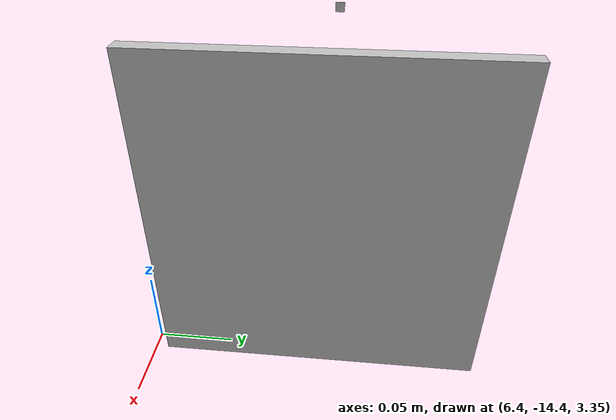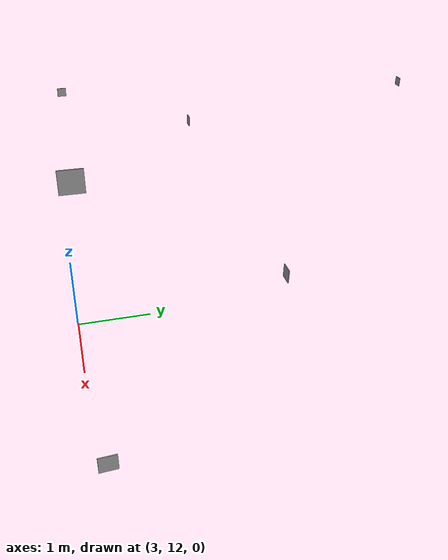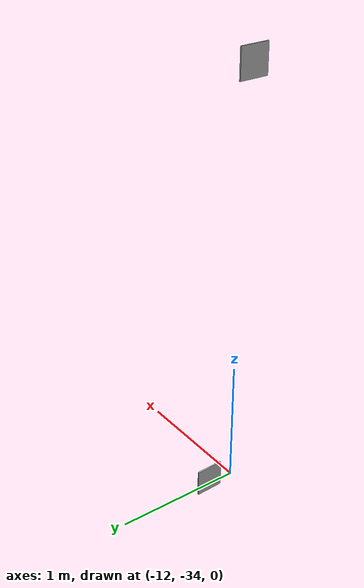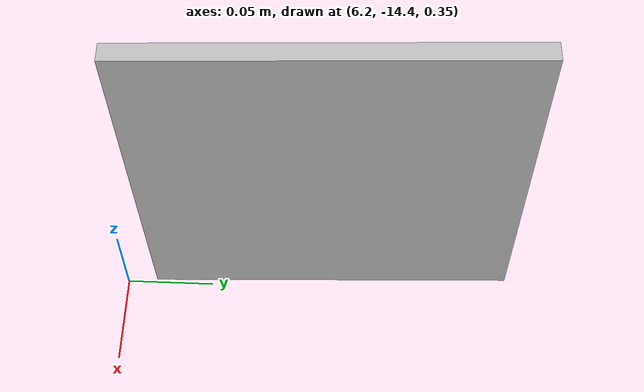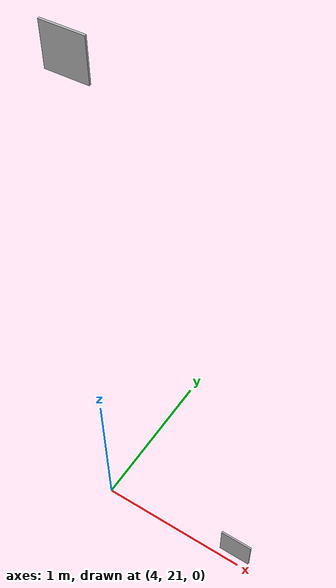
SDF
<sdf version="1.7">
 <world name="world">
  <gravity>0 0 -9.8</gravity>
  <physics name="default_physics" default="0" type="ode">
   <max_step_size>0.001</max_step_size>
   <real_time_factor>1</real_time_factor>
   <real_time_update_rate>1000</real_time_update_rate>
  </physics>
  <light name="ceiling_light_0" type="spot">
   <pose>-0.194533 13.8034 2.8 0 -0 0</pose>
   <diffuse>0.494118 0.494118 0.494118 1</diffuse>
   <specular>0.0941176 0.0941176 0.0941176 1</specular>
   <direction>0 0 -1</direction>
   <attenuation>
    <range>20</range>
    <constant>0.8</constant>
    <linear>0.1</linear>
    <quadratic>0.001</quadratic>
   </attenuation>
   <cast_shadows>0</cast_shadows>
   <spot><inner_angle>1</inner_angle><outer_angle>2.5</outer_angle><falloff>1</falloff></spot>
  </light>
  <light name="ceiling_light_1" type="spot">
   <pose>6.30005 8.9551 2.8 0 -0 0</pose>
   <diffuse>0.494118 0.494118 0.494118 1</diffuse>
   <specular>0.0941176 0.0941176 0.0941176 1</specular>
   <direction>0 0 -1</direction>
   <attenuation>
    <range>20</range>
    <constant>0.8</constant>
    <linear>0.1</linear>
    <quadratic>0.001</quadratic>
   </attenuation>
   <cast_shadows>0</cast_shadows>
   <spot><inner_angle>1</inner_angle><outer_angle>2.5</outer_angle><falloff>1</falloff></spot>
  </light>
  <light name="ceiling_light_2" type="spot">
   <pose>0.212387 2.1354 2.8 0 -0 0</pose>
   <diffuse>0.494118 0.494118 0.494118 1</diffuse>
   <specular>0.0941176 0.0941176 0.0941176 1</specular>
   <direction>0 0 -1</direction>
   <attenuation>
    <range>20</range>
    <constant>0.8</constant>
    <linear>0.1</linear>
    <quadratic>0.001</quadratic>
   </attenuation>
   <cast_shadows>0</cast_shadows>
   <spot><inner_angle>1</inner_angle><outer_angle>2.5</outer_angle><falloff>1</falloff></spot>
  </light>
  <light name="ceiling_light_3" type="spot">
   <pose>-5.81057 7.18327 2.8 0 -0 0</pose>
   <diffuse>0.494118 0.494118 0.494118 1</diffuse>
   <specular>0.0941176 0.0941176 0.0941176 1</specular>
   <direction>0 0 -1</direction>
   <attenuation>
    <range>20</range>
    <constant>0.8</constant>
    <linear>0.1</linear>
    <quadratic>0.001</quadratic>
   </attenuation>
   <cast_shadows>0</cast_shadows>
   <spot><inner_angle>1</inner_angle><outer_angle>2.5</outer_angle><falloff>1</falloff></spot>
  </light>
  <light name="ceiling_light_4" type="spot">
   <pose>-4.54396 -3.67312 2.8 0 -0 0</pose>
   <diffuse>0.494118 0.494118 0.494118 1</diffuse>
   <specular>0.0941176 0.0941176 0.0941176 1</specular>
   <direction>0 0 -1</direction>
   <attenuation>
    <range>20</range>
    <constant>0.8</constant>
    <linear>0.1</linear>
    <quadratic>0.001</quadratic>
   </attenuation>
   <cast_shadows>0</cast_shadows>
   <spot><inner_angle>1</inner_angle><outer_angle>2.5</outer_angle><falloff>1</falloff></spot>
  </light>
  <light name="ceiling_light_5" type="spot">
   <pose>-4.37087 -14.4782 2.8 0 -0 0</pose>
   <diffuse>0.494118 0.494118 0.494118 1</diffuse>
   <specular>0.0941176 0.0941176 0.0941176 1</specular>
   <direction>0 0 -1</direction>
   <attenuation>
    <range>20</range>
    <constant>0.8</constant>
    <linear>0.1</linear>
    <quadratic>0.001</quadratic>
   </attenuation>
   <cast_shadows>0</cast_shadows>
   <spot><inner_angle>1</inner_angle><outer_angle>2.5</outer_angle><falloff>1</falloff></spot>
  </light>
  <light name="ceiling_light_6" type="spot">
   <pose>-4.39457 -24.5382 2.8 0 -0 0</pose>
   <diffuse>0.494118 0.494118 0.494118 1</diffuse>
   <specular>0.0941176 0.0941176 0.0941176 1</specular>
   <direction>0 0 -1</direction>
   <attenuation>
    <range>20</range>
    <constant>0.8</constant>
    <linear>0.1</linear>
    <quadratic>0.001</quadratic>
   </attenuation>
   <cast_shadows>0</cast_shadows>
   <spot><inner_angle>1</inner_angle><outer_angle>2.5</outer_angle><falloff>1</falloff></spot>
  </light>
  <light name="ceiling_light_7" type="spot">
   <pose>-4.89858 -33.5301 2.8 0 -0 0</pose>
   <diffuse>0.494118 0.494118 0.494118 1</diffuse>
   <specular>0.0941176 0.0941176 0.0941176 1</specular>
   <direction>0 0 -1</direction>
   <attenuation>
    <range>20</range>
    <constant>0.8</constant>
    <linear>0.1</linear>
    <quadratic>0.001</quadratic>
   </attenuation>
   <cast_shadows>0</cast_shadows>
   <spot><inner_angle>1</inner_angle><outer_angle>2.5</outer_angle><falloff>1</falloff></spot>
  </light>
  <light name="ceiling_light_8" type="spot">
   <pose>4.63967 -24.4587 2.8 0 -0 0</pose>
   <diffuse>0.494118 0.494118 0.494118 1</diffuse>
   <specular>0.0941176 0.0941176 0.0941176 1</specular>
   <direction>0 0 -1</direction>
   <attenuation>
    <range>20</range>
    <constant>0.8</constant>
    <linear>0.1</linear>
    <quadratic>0.001</quadratic>
   </attenuation>
   <cast_shadows>0</cast_shadows>
   <spot><inner_angle>1</inner_angle><outer_angle>2.5</outer_angle><falloff>1</falloff></spot>
  </light>
  <light name="ceiling_light_9" type="spot">
   <pose>4.92633 -14.3923 2.8 0 -0 0</pose>
   <diffuse>0.494118 0.494118 0.494118 1</diffuse>
   <specular>0.0941176 0.0941176 0.0941176 1</specular>
   <direction>0 0 -1</direction>
   <attenuation>
    <range>20</range>
    <constant>0.8</constant>
    <linear>0.1</linear>
    <quadratic>0.001</quadratic>
   </attenuation>
   <cast_shadows>0</cast_shadows>
   <spot><inner_angle>1</inner_angle><outer_angle>2.5</outer_angle><falloff>1</falloff></spot>
  </light>
  <light name="ceiling_light_10" type="spot">
   <pose>4.7009 -3.77715 2.8 0 -0 0</pose>
   <diffuse>0.494118 0.494118 0.494118 1</diffuse>
   <specular>0.0941176 0.0941176 0.0941176 1</specular>
   <direction>0 0 -1</direction>
   <attenuation>
    <range>20</range>
    <constant>0.8</constant>
    <linear>0.1</linear>
    <quadratic>0.001</quadratic>
   </attenuation>
   <cast_shadows>0</cast_shadows>
   <spot><inner_angle>1</inner_angle><outer_angle>2.5</outer_angle><falloff>1</falloff></spot>
  </light>
  <light name="ceiling_light_11" type="spot">
   <pose>-9.02467 14.516 2.8 0 -0 0</pose>
   <diffuse>0.494118 0.494118 0.494118 1</diffuse>
   <specular>0.0941176 0.0941176 0.0941176 1</specular>
   <direction>0 0 -1</direction>
   <attenuation>
    <range>20</range>
    <constant>0.8</constant>
    <linear>0.1</linear>
    <quadratic>0.001</quadratic>
   </attenuation>
   <cast_shadows>0</cast_shadows>
   <spot><inner_angle>1</inner_angle><outer_angle>2.5</outer_angle><falloff>1</falloff></spot>
  </light>
  <light name="ceiling_light_12" type="spot">
   <pose>9.12495 14.4234 2.8 0 -0 0</pose>
   <diffuse>0.494118 0.494118 0.494118 1</diffuse>
   <specular>0.0941176 0.0941176 0.0941176 1</specular>
   <direction>0 0 -1</direction>
   <attenuation>
    <range>20</range>
    <constant>0.8</constant>
    <linear>0.1</linear>
    <quadratic>0.001</quadratic>
   </attenuation>
   <cast_shadows>0</cast_shadows>
   <spot><inner_angle>1</inner_angle><outer_angle>2.5</outer_angle><falloff>1</falloff></spot>
  </light>
  <light name="ceiling_light_13" type="spot">
   <pose>9.49822 -5.56304 2.8 0 -0 0</pose>
   <diffuse>0.494118 0.494118 0.494118 1</diffuse>
   <specular>0.0941176 0.0941176 0.0941176 1</specular>
   <direction>0 0 -1</direction>
   <attenuation>
    <range>20</range>
    <constant>0.8</constant>
    <linear>0.1</linear>
    <quadratic>0.001</quadratic>
   </attenuation>
   <cast_shadows>0</cast_shadows>
   <spot><inner_angle>1</inner_angle><outer_angle>2.5</outer_angle><falloff>1</falloff></spot>
  </light>
  <light name="ceiling_light_14" type="spot">
   <pose>-9.46806 -4.74662 2.8 0 -0 0</pose>
   <diffuse>0.494118 0.494118 0.494118 1</diffuse>
   <specular>0.0941176 0.0941176 0.0941176 1</specular>
   <direction>0 0 -1</direction>
   <attenuation>
    <range>20</range>
    <constant>0.8</constant>
    <linear>0.1</linear>
    <quadratic>0.001</quadratic>
   </attenuation>
   <cast_shadows>0</cast_shadows>
   <spot><inner_angle>1</inner_angle><outer_angle>2.5</outer_angle><falloff>1</falloff></spot>
  </light>
  <light name="ceiling_light_15" type="spot">
   <pose>-9.46885 -19.0778 2.8 0 -0 0</pose>
   <diffuse>0.494118 0.494118 0.494118 1</diffuse>
   <specular>0.0901961 0.0901961 0.0901961 1</specular>
   <direction>0 0 -1</direction>
   <attenuation>
    <range>20</range>
    <constant>0.8</constant>
    <linear>0.1</linear>
    <quadratic>0.001</quadratic>
   </attenuation>
   <cast_shadows>0</cast_shadows>
   <spot><inner_angle>1</inner_angle><outer_angle>2.5</outer_angle><falloff>1</falloff></spot>
  </light>
  <light name="ceiling_light_16" type="spot">
   <pose>-9.42207 -28.0708 2.8 0 -0 0</pose>
   <diffuse>0.494118 0.494118 0.494118 1</diffuse>
   <specular>0.0901961 0.0901961 0.0901961 1</specular>
   <direction>0 0 -1</direction>
   <attenuation>
    <range>20</range>
    <constant>0.8</constant>
    <linear>0.1</linear>
    <quadratic>0.001</quadratic>
   </attenuation>
   <cast_shadows>0</cast_shadows>
   <spot><inner_angle>1</inner_angle><outer_angle>2.5</outer_angle><falloff>1</falloff></spot>
  </light>
  <light name="ceiling_light_17" type="spot">
   <pose>1.66302 -11.4026 2.8 0 -0 0</pose>
   <diffuse>0.494118 0.494118 0.494118 1</diffuse>
   <specular>0.0901961 0.0901961 0.0901961 1</specular>
   <direction>0 0 -1</direction>
   <attenuation>
    <range>20</range>
    <constant>0.8</constant>
    <linear>0.1</linear>
    <quadratic>0.001</quadratic>
   </attenuation>
   <cast_shadows>0</cast_shadows>
   <spot><inner_angle>1</inner_angle><outer_angle>2.5</outer_angle><falloff>1</falloff></spot>
  </light>
  <light name="ceiling_light_18" type="spot">
   <pose>-1.64839 -19.4418 2.8 0 -0 0</pose>
   <diffuse>0.494118 0.494118 0.494118 1</diffuse>
   <specular>0.0901961 0.0901961 0.0901961 1</specular>
   <direction>0 0 -1</direction>
   <attenuation>
    <range>20</range>
    <constant>0.8</constant>
    <linear>0.1</linear>
    <quadratic>0.001</quadratic>
   </attenuation>
   <cast_shadows>0</cast_shadows>
   <spot><inner_angle>1</inner_angle><outer_angle>2.5</outer_angle><falloff>1</falloff></spot>
  </light>
  <light name="ceiling_light_19" type="spot">
   <pose>1.85793 -19.3856 2.8 0 -0 0</pose>
   <diffuse>0.494118 0.494118 0.494118 1</diffuse>
   <specular>0.0901961 0.0901961 0.0901961 1</specular>
   <direction>0 0 -1</direction>
   <attenuation>
    <range>20</range>
    <constant>0.8</constant>
    <linear>0.1</linear>
    <quadratic>0.001</quadratic>
   </attenuation>
   <cast_shadows>0</cast_shadows>
   <spot><inner_angle>1</inner_angle><outer_angle>2.5</outer_angle><falloff>1</falloff></spot>
  </light>
  <light name="ceiling_light_20" type="spot">
   <pose>-3.74086 -4.44142 2.8 0 -0 0</pose>
   <diffuse>0.494118 0.494118 0.494118 1</diffuse>
   <specular>0.0901961 0.0901961 0.0901961 1</specular>
   <direction>0 0 -1</direction>
   <attenuation>
    <range>20</range>
    <constant>0.8</constant>
    <linear>0.1</linear>
    <quadratic>0.001</quadratic>
   </attenuation>
   <cast_shadows>0</cast_shadows>
   <spot><inner_angle>1</inner_angle><outer_angle>2.5</outer_angle><falloff>1</falloff></spot>
  </light>
  <light name="ceiling_light_21" type="spot">
   <pose>-1.7167 -11.3151 2.8 0 -0 0</pose>
   <diffuse>0.494118 0.494118 0.494118 1</diffuse>
   <specular>0.0901961 0.0901961 0.0901961 1</specular>
   <direction>0 0 -1</direction>
   <attenuation>
    <range>20</range>
    <constant>0.8</constant>
    <linear>0.1</linear>
    <quadratic>0.001</quadratic>
   </attenuation>
   <cast_shadows>0</cast_shadows>
   <spot><inner_angle>1</inner_angle><outer_angle>2.5</outer_angle><falloff>1</falloff></spot>
  </light>
  <light name="ceiling_light_22" type="spot">
   <pose>-9.60933 -14.3792 2.8 0 -0 0</pose>
   <diffuse>0.494118 0.494118 0.494118 1</diffuse>
   <specular>0.0901961 0.0901961 0.0901961 1</specular>
   <direction>0 0 -1</direction>
   <attenuation>
    <range>20</range>
    <constant>0.8</constant>
    <linear>0.1</linear>
    <quadratic>0.001</quadratic>
   </attenuation>
   <cast_shadows>0</cast_shadows>
   <spot><inner_angle>1</inner_angle><outer_angle>2.5</outer_angle><falloff>1</falloff></spot>
  </light>
  <light name="ceiling_light_23" type="spot">
   <pose>-8.89647 0.199867 2.8 0 -0 0</pose>
   <diffuse>0.494118 0.494118 0.494118 1</diffuse>
   <specular>0.0901961 0.0901961 0.0901961 1</specular>
   <direction>0 0 -1</direction>
   <attenuation>
    <range>20</range>
    <constant>0.8</constant>
    <linear>0.1</linear>
    <quadratic>0.001</quadratic>
   </attenuation>
   <cast_shadows>0</cast_shadows>
   <spot><inner_angle>1</inner_angle><outer_angle>2.5</outer_angle><falloff>1</falloff></spot>
  </light>
  <light name="ceiling_light_24" type="spot">
   <pose>8.80325 1.99908 2.8 0 -0 0</pose>
   <diffuse>0.494118 0.494118 0.494118 1</diffuse>
   <specular>0.0901961 0.0901961 0.0901961 1</specular>
   <direction>0 0 -1</direction>
   <attenuation>
    <range>20</range>
    <constant>0.8</constant>
    <linear>0.1</linear>
    <quadratic>0.001</quadratic>
   </attenuation>
   <cast_shadows>0</cast_shadows>
   <spot><inner_angle>1</inner_angle><outer_angle>2.5</outer_angle><falloff>1</falloff></spot>
  </light>
  <light name="ceiling_light_25" type="spot">
   <pose>10.6153 10.2443 2.8 0 -0 0</pose>
   <diffuse>0.494118 0.494118 0.494118 1</diffuse>
   <specular>0.0941176 0.0941176 0.0941176 1</specular>
   <direction>0 0 -1</direction>
   <attenuation>
    <range>20</range>
    <constant>0.8</constant>
    <linear>0.1</linear>
    <quadratic>0.001</quadratic>
   </attenuation>
   <cast_shadows>0</cast_shadows>
   <spot><inner_angle>1</inner_angle><outer_angle>2.5</outer_angle><falloff>1</falloff></spot>
  </light>
  <light name="ceiling_light_26" type="spot">
   <pose>10.7071 5.95677 2.8 0 -0 0</pose>
   <diffuse>0.494118 0.494118 0.494118 1</diffuse>
   <specular>0.0941176 0.0941176 0.0941176 1</specular>
   <direction>0 0 -1</direction>
   <attenuation>
    <range>20</range>
    <constant>0.8</constant>
    <linear>0.1</linear>
    <quadratic>0.001</quadratic>
   </attenuation>
   <cast_shadows>0</cast_shadows>
   <spot><inner_angle>1</inner_angle><outer_angle>2.5</outer_angle><falloff>1</falloff></spot>
  </light>
  <light name="ceiling_light_27" type="spot">
   <pose>-10.6266 10.4097 2.8 0 -0 0</pose>
   <diffuse>0.494118 0.494118 0.494118 1</diffuse>
   <specular>0.0941176 0.0941176 0.0941176 1</specular>
   <direction>0 0 -1</direction>
   <attenuation>
    <range>20</range>
    <constant>0.8</constant>
    <linear>0.1</linear>
    <quadratic>0.001</quadratic>
   </attenuation>
   <cast_shadows>0</cast_shadows>
   <spot><inner_angle>1</inner_angle><outer_angle>2.5</outer_angle><falloff>1</falloff></spot>
  </light>
  <light name="ceiling_light_28" type="spot">
   <pose>-10.7712 6.05323 2.8 0 -0 0</pose>
   <diffuse>0.494118 0.494118 0.494118 1</diffuse>
   <specular>0.0941176 0.0941176 0.0941176 1</specular>
   <direction>0 0 -1</direction>
   <attenuation>
    <range>20</range>
    <constant>0.8</constant>
    <linear>0.1</linear>
    <quadratic>0.001</quadratic>
   </attenuation>
   <cast_shadows>0</cast_shadows>
   <spot><inner_angle>1</inner_angle><outer_angle>2.5</outer_angle><falloff>1</falloff></spot>
  </light>
  <light name="ceiling_light_29" type="spot">
   <pose>-9.64585 -30.5079 2.8 0 -0 0</pose>
   <diffuse>0.494118 0.494118 0.494118 1</diffuse>
   <specular>0.0941176 0.0941176 0.0941176 1</specular>
   <direction>0 0 -1</direction>
   <attenuation>
    <range>20</range>
    <constant>0.8</constant>
    <linear>0.1</linear>
    <quadratic>0.001</quadratic>
   </attenuation>
   <cast_shadows>0</cast_shadows>
   <spot><inner_angle>1</inner_angle><outer_angle>2.5</outer_angle><falloff>1</falloff></spot>
  </light>
  <light name="ceiling_light_30" type="spot">
   <pose>-11.9169 -24.6051 2.8 0 -0 0</pose>
   <diffuse>0.494118 0.494118 0.494118 1</diffuse>
   <specular>0.0941176 0.0941176 0.0941176 1</specular>
   <direction>0 0 -1</direction>
   <attenuation>
    <range>20</range>
    <constant>0.8</constant>
    <linear>0.1</linear>
    <quadratic>0.001</quadratic>
   </attenuation>
   <cast_shadows>0</cast_shadows>
   <spot><inner_angle>1</inner_angle><outer_angle>2.5</outer_angle><falloff>1</falloff></spot>
  </light>
  <light name="ceiling_light_31" type="spot">
   <pose>-4.29701 11.4852 2.8 0 -0 0</pose>
   <diffuse>0.494118 0.494118 0.494118 1</diffuse>
   <specular>0.0901961 0.0901961 0.0901961 1</specular>
   <direction>0 0 -1</direction>
   <attenuation>
    <range>20</range>
    <constant>0.8</constant>
    <linear>0.1</linear>
    <quadratic>0.001</quadratic>
   </attenuation>
   <cast_shadows>0</cast_shadows>
   <spot><inner_angle>1</inner_angle><outer_angle>2.5</outer_angle><falloff>1</falloff></spot>
  </light>
  <light name="ceiling_light_32" type="spot">
   <pose>3.41329 12.0406 2.8 0 -0 0</pose>
   <diffuse>0.494118 0.494118 0.494118 1</diffuse>
   <specular>0.0901961 0.0901961 0.0901961 1</specular>
   <direction>0 0 -1</direction>
   <attenuation>
    <range>20</range>
    <constant>0.8</constant>
    <linear>0.1</linear>
    <quadratic>0.001</quadratic>
   </attenuation>
   <cast_shadows>0</cast_shadows>
   <spot><inner_angle>1</inner_angle><outer_angle>2.5</outer_angle><falloff>1</falloff></spot>
  </light>
  <light name="ceiling_light_33" type="spot">
   <pose>-0.181496 7.28878 2.8 0 -0 0</pose>
   <diffuse>0.494118 0.494118 0.494118 1</diffuse>
   <specular>0.0901961 0.0901961 0.0901961 1</specular>
   <direction>0 0 -1</direction>
   <attenuation>
    <range>20</range>
    <constant>0.8</constant>
    <linear>0.1</linear>
    <quadratic>0.001</quadratic>
   </attenuation>
   <cast_shadows>0</cast_shadows>
   <spot><inner_angle>1</inner_angle><outer_angle>2.5</outer_angle><falloff>1</falloff></spot>
  </light>
  <light name="floor_1_ceiling_light_0" type="spot">
   <pose>-0.194533 13.8034 5.8 0 -0 0</pose>
   <diffuse>0.494118 0.494118 0.494118 1</diffuse>
   <specular>0.0941176 0.0941176 0.0941176 1</specular>
   <direction>0 0 -1</direction>
   <attenuation>
    <range>20</range>
    <constant>0.8</constant>
    <linear>0.1</linear>
    <quadratic>0.001</quadratic>
   </attenuation>
   <cast_shadows>0</cast_shadows>
   <spot><inner_angle>1</inner_angle><outer_angle>2.5</outer_angle><falloff>1</falloff></spot>
  </light>
  <light name="floor_1_ceiling_light_1" type="spot">
   <pose>6.30005 8.9551 5.8 0 -0 0</pose>
   <diffuse>0.494118 0.494118 0.494118 1</diffuse>
   <specular>0.0941176 0.0941176 0.0941176 1</specular>
   <direction>0 0 -1</direction>
   <attenuation>
    <range>20</range>
    <constant>0.8</constant>
    <linear>0.1</linear>
    <quadratic>0.001</quadratic>
   </attenuation>
   <cast_shadows>0</cast_shadows>
   <spot><inner_angle>1</inner_angle><outer_angle>2.5</outer_angle><falloff>1</falloff></spot>
  </light>
  <light name="floor_1_ceiling_light_2" type="spot">
   <pose>0.212387 2.1354 5.8 0 -0 0</pose>
   <diffuse>0.494118 0.494118 0.494118 1</diffuse>
   <specular>0.0941176 0.0941176 0.0941176 1</specular>
   <direction>0 0 -1</direction>
   <attenuation>
    <range>20</range>
    <constant>0.8</constant>
    <linear>0.1</linear>
    <quadratic>0.001</quadratic>
   </attenuation>
   <cast_shadows>0</cast_shadows>
   <spot><inner_angle>1</inner_angle><outer_angle>2.5</outer_angle><falloff>1</falloff></spot>
  </light>
  <light name="floor_1_ceiling_light_3" type="spot">
   <pose>-5.81057 7.18327 5.8 0 -0 0</pose>
   <diffuse>0.494118 0.494118 0.494118 1</diffuse>
   <specular>0.0941176 0.0941176 0.0941176 1</specular>
   <direction>0 0 -1</direction>
   <attenuation>
    <range>20</range>
    <constant>0.8</constant>
    <linear>0.1</linear>
    <quadratic>0.001</quadratic>
   </attenuation>
   <cast_shadows>0</cast_shadows>
   <spot><inner_angle>1</inner_angle><outer_angle>2.5</outer_angle><falloff>1</falloff></spot>
  </light>
  <light name="floor_1_ceiling_light_4" type="spot">
   <pose>-4.54396 -3.67312 5.8 0 -0 0</pose>
   <diffuse>0.494118 0.494118 0.494118 1</diffuse>
   <specular>0.0941176 0.0941176 0.0941176 1</specular>
   <direction>0 0 -1</direction>
   <attenuation>
    <range>20</range>
    <constant>0.8</constant>
    <linear>0.1</linear>
    <quadratic>0.001</quadratic>
   </attenuation>
   <cast_shadows>0</cast_shadows>
   <spot><inner_angle>1</inner_angle><outer_angle>2.5</outer_angle><falloff>1</falloff></spot>
  </light>
  <light name="floor_1_ceiling_light_5" type="spot">
   <pose>-4.37087 -14.4782 5.8 0 -0 0</pose>
   <diffuse>0.494118 0.494118 0.494118 1</diffuse>
   <specular>0.0941176 0.0941176 0.0941176 1</specular>
   <direction>0 0 -1</direction>
   <attenuation>
    <range>20</range>
    <constant>0.8</constant>
    <linear>0.1</linear>
    <quadratic>0.001</quadratic>
   </attenuation>
   <cast_shadows>0</cast_shadows>
   <spot><inner_angle>1</inner_angle><outer_angle>2.5</outer_angle><falloff>1</falloff></spot>
  </light>
  <light name="floor_1_ceiling_light_6" type="spot">
   <pose>-4.39457 -24.5382 5.8 0 -0 0</pose>
   <diffuse>0.494118 0.494118 0.494118 1</diffuse>
   <specular>0.0941176 0.0941176 0.0941176 1</specular>
   <direction>0 0 -1</direction>
   <attenuation>
    <range>20</range>
    <constant>0.8</constant>
    <linear>0.1</linear>
    <quadratic>0.001</quadratic>
   </attenuation>
   <cast_shadows>0</cast_shadows>
   <spot><inner_angle>1</inner_angle><outer_angle>2.5</outer_angle><falloff>1</falloff></spot>
  </light>
  <light name="floor_1_ceiling_light_7" type="spot">
   <pose>-4.89858 -33.5301 5.8 0 -0 0</pose>
   <diffuse>0.494118 0.494118 0.494118 1</diffuse>
   <specular>0.0941176 0.0941176 0.0941176 1</specular>
   <direction>0 0 -1</direction>
   <attenuation>
    <range>20</range>
    <constant>0.8</constant>
    <linear>0.1</linear>
    <quadratic>0.001</quadratic>
   </attenuation>
   <cast_shadows>0</cast_shadows>
   <spot><inner_angle>1</inner_angle><outer_angle>2.5</outer_angle><falloff>1</falloff></spot>
  </light>
  <light name="floor_1_ceiling_light_8" type="spot">
   <pose>4.63967 -24.4587 5.8 0 -0 0</pose>
   <diffuse>0.494118 0.494118 0.494118 1</diffuse>
   <specular>0.0941176 0.0941176 0.0941176 1</specular>
   <direction>0 0 -1</direction>
   <attenuation>
    <range>20</range>
    <constant>0.8</constant>
    <linear>0.1</linear>
    <quadratic>0.001</quadratic>
   </attenuation>
   <cast_shadows>0</cast_shadows>
   <spot><inner_angle>1</inner_angle><outer_angle>2.5</outer_angle><falloff>1</falloff></spot>
  </light>
  <light name="floor_1_ceiling_light_9" type="spot">
   <pose>4.92633 -14.3923 5.8 0 -0 0</pose>
   <diffuse>0.494118 0.494118 0.494118 1</diffuse>
   <specular>0.0941176 0.0941176 0.0941176 1</specular>
   <direction>0 0 -1</direction>
   <attenuation>
    <range>20</range>
    <constant>0.8</constant>
    <linear>0.1</linear>
    <quadratic>0.001</quadratic>
   </attenuation>
   <cast_shadows>0</cast_shadows>
   <spot><inner_angle>1</inner_angle><outer_angle>2.5</outer_angle><falloff>1</falloff></spot>
  </light>
  <light name="floor_1_ceiling_light_10" type="spot">
   <pose>4.7009 -3.77715 5.8 0 -0 0</pose>
   <diffuse>0.494118 0.494118 0.494118 1</diffuse>
   <specular>0.0941176 0.0941176 0.0941176 1</specular>
   <direction>0 0 -1</direction>
   <attenuation>
    <range>20</range>
    <constant>0.8</constant>
    <linear>0.1</linear>
    <quadratic>0.001</quadratic>
   </attenuation>
   <cast_shadows>0</cast_shadows>
   <spot><inner_angle>1</inner_angle><outer_angle>2.5</outer_angle><falloff>1</falloff></spot>
  </light>
  <light name="floor_1_ceiling_light_11" type="spot">
   <pose>-9.02467 14.516 5.8 0 -0 0</pose>
   <diffuse>0.494118 0.494118 0.494118 1</diffuse>
   <specular>0.0941176 0.0941176 0.0941176 1</specular>
   <direction>0 0 -1</direction>
   <attenuation>
    <range>20</range>
    <constant>0.8</constant>
    <linear>0.1</linear>
    <quadratic>0.001</quadratic>
   </attenuation>
   <cast_shadows>0</cast_shadows>
   <spot><inner_angle>1</inner_angle><outer_angle>2.5</outer_angle><falloff>1</falloff></spot>
  </light>
  <light name="floor_1_ceiling_light_12" type="spot">
   <pose>9.12495 14.4234 5.8 0 -0 0</pose>
   <diffuse>0.494118 0.494118 0.494118 1</diffuse>
   <specular>0.0941176 0.0941176 0.0941176 1</specular>
   <direction>0 0 -1</direction>
   <attenuation>
    <range>20</range>
    <constant>0.8</constant>
    <linear>0.1</linear>
    <quadratic>0.001</quadratic>
   </attenuation>
   <cast_shadows>0</cast_shadows>
   <spot><inner_angle>1</inner_angle><outer_angle>2.5</outer_angle><falloff>1</falloff></spot>
  </light>
  <light name="floor_1_ceiling_light_13" type="spot">
   <pose>9.49822 -5.56304 5.8 0 -0 0</pose>
   <diffuse>0.494118 0.494118 0.494118 1</diffuse>
   <specular>0.0941176 0.0941176 0.0941176 1</specular>
   <direction>0 0 -1</direction>
   <attenuation>
    <range>20</range>
    <constant>0.8</constant>
    <linear>0.1</linear>
    <quadratic>0.001</quadratic>
   </attenuation>
   <cast_shadows>0</cast_shadows>
   <spot><inner_angle>1</inner_angle><outer_angle>2.5</outer_angle><falloff>1</falloff></spot>
  </light>
  <light name="floor_1_ceiling_light_14" type="spot">
   <pose>-9.46806 -4.74662 5.8 0 -0 0</pose>
   <diffuse>0.494118 0.494118 0.494118 1</diffuse>
   <specular>0.0941176 0.0941176 0.0941176 1</specular>
   <direction>0 0 -1</direction>
   <attenuation>
    <range>20</range>
    <constant>0.8</constant>
    <linear>0.1</linear>
    <quadratic>0.001</quadratic>
   </attenuation>
   <cast_shadows>0</cast_shadows>
   <spot><inner_angle>1</inner_angle><outer_angle>2.5</outer_angle><falloff>1</falloff></spot>
  </light>
  <light name="floor_1_ceiling_light_15" type="spot">
   <pose>-9.46885 -19.0778 5.8 0 -0 0</pose>
   <diffuse>0.494118 0.494118 0.494118 1</diffuse>
   <specular>0.0901961 0.0901961 0.0901961 1</specular>
   <direction>0 0 -1</direction>
   <attenuation>
    <range>20</range>
    <constant>0.8</constant>
    <linear>0.1</linear>
    <quadratic>0.001</quadratic>
   </attenuation>
   <cast_shadows>0</cast_shadows>
   <spot><inner_angle>1</inner_angle><outer_angle>2.5</outer_angle><falloff>1</falloff></spot>
  </light>
  <light name="floor_1_ceiling_light_16" type="spot">
   <pose>-9.42207 -28.0708 5.8 0 -0 0</pose>
   <diffuse>0.494118 0.494118 0.494118 1</diffuse>
   <specular>0.0901961 0.0901961 0.0901961 1</specular>
   <direction>0 0 -1</direction>
   <attenuation>
    <range>20</range>
    <constant>0.8</constant>
    <linear>0.1</linear>
    <quadratic>0.001</quadratic>
   </attenuation>
   <cast_shadows>0</cast_shadows>
   <spot><inner_angle>1</inner_angle><outer_angle>2.5</outer_angle><falloff>1</falloff></spot>
  </light>
  <light name="floor_1_ceiling_light_17" type="spot">
   <pose>1.66302 -11.4026 5.8 0 -0 0</pose>
   <diffuse>0.494118 0.494118 0.494118 1</diffuse>
   <specular>0.0901961 0.0901961 0.0901961 1</specular>
   <direction>0 0 -1</direction>
   <attenuation>
    <range>20</range>
    <constant>0.8</constant>
    <linear>0.1</linear>
    <quadratic>0.001</quadratic>
   </attenuation>
   <cast_shadows>0</cast_shadows>
   <spot><inner_angle>1</inner_angle><outer_angle>2.5</outer_angle><falloff>1</falloff></spot>
  </light>
  <light name="floor_1_ceiling_light_18" type="spot">
   <pose>-1.64839 -19.4418 5.8 0 -0 0</pose>
   <diffuse>0.494118 0.494118 0.494118 1</diffuse>
   <specular>0.0901961 0.0901961 0.0901961 1</specular>
   <direction>0 0 -1</direction>
   <attenuation>
    <range>20</range>
    <constant>0.8</constant>
    <linear>0.1</linear>
    <quadratic>0.001</quadratic>
   </attenuation>
   <cast_shadows>0</cast_shadows>
   <spot><inner_angle>1</inner_angle><outer_angle>2.5</outer_angle><falloff>1</falloff></spot>
  </light>
  <light name="floor_1_ceiling_light_19" type="spot">
   <pose>1.85793 -19.3856 5.8 0 -0 0</pose>
   <diffuse>0.494118 0.494118 0.494118 1</diffuse>
   <specular>0.0901961 0.0901961 0.0901961 1</specular>
   <direction>0 0 -1</direction>
   <attenuation>
    <range>20</range>
    <constant>0.8</constant>
    <linear>0.1</linear>
    <quadratic>0.001</quadratic>
   </attenuation>
   <cast_shadows>0</cast_shadows>
   <spot><inner_angle>1</inner_angle><outer_angle>2.5</outer_angle><falloff>1</falloff></spot>
  </light>
  <light name="floor_1_ceiling_light_20" type="spot">
   <pose>-3.74086 -4.44142 5.8 0 -0 0</pose>
   <diffuse>0.494118 0.494118 0.494118 1</diffuse>
   <specular>0.0901961 0.0901961 0.0901961 1</specular>
   <direction>0 0 -1</direction>
   <attenuation>
    <range>20</range>
    <constant>0.8</constant>
    <linear>0.1</linear>
    <quadratic>0.001</quadratic>
   </attenuation>
   <cast_shadows>0</cast_shadows>
   <spot><inner_angle>1</inner_angle><outer_angle>2.5</outer_angle><falloff>1</falloff></spot>
  </light>
  <light name="floor_1_ceiling_light_21" type="spot">
   <pose>-1.7167 -11.3151 5.8 0 -0 0</pose>
   <diffuse>0.494118 0.494118 0.494118 1</diffuse>
   <specular>0.0901961 0.0901961 0.0901961 1</specular>
   <direction>0 0 -1</direction>
   <attenuation>
    <range>20</range>
    <constant>0.8</constant>
    <linear>0.1</linear>
    <quadratic>0.001</quadratic>
   </attenuation>
   <cast_shadows>0</cast_shadows>
   <spot><inner_angle>1</inner_angle><outer_angle>2.5</outer_angle><falloff>1</falloff></spot>
  </light>
  <light name="floor_1_ceiling_light_22" type="spot">
   <pose>-9.60933 -14.3792 5.8 0 -0 0</pose>
   <diffuse>0.494118 0.494118 0.494118 1</diffuse>
   <specular>0.0901961 0.0901961 0.0901961 1</specular>
   <direction>0 0 -1</direction>
   <attenuation>
    <range>20</range>
    <constant>0.8</constant>
    <linear>0.1</linear>
    <quadratic>0.001</quadratic>
   </attenuation>
   <cast_shadows>0</cast_shadows>
   <spot><inner_angle>1</inner_angle><outer_angle>2.5</outer_angle><falloff>1</falloff></spot>
  </light>
  <light name="floor_1_ceiling_light_23" type="spot">
   <pose>-8.89647 0.199867 5.8 0 -0 0</pose>
   <diffuse>0.494118 0.494118 0.494118 1</diffuse>
   <specular>0.0901961 0.0901961 0.0901961 1</specular>
   <direction>0 0 -1</direction>
   <attenuation>
    <range>20</range>
    <constant>0.8</constant>
    <linear>0.1</linear>
    <quadratic>0.001</quadratic>
   </attenuation>
   <cast_shadows>0</cast_shadows>
   <spot><inner_angle>1</inner_angle><outer_angle>2.5</outer_angle><falloff>1</falloff></spot>
  </light>
  <light name="floor_1_ceiling_light_24" type="spot">
   <pose>8.80325 1.99908 5.8 0 -0 0</pose>
   <diffuse>0.494118 0.494118 0.494118 1</diffuse>
   <specular>0.0901961 0.0901961 0.0901961 1</specular>
   <direction>0 0 -1</direction>
   <attenuation>
    <range>20</range>
    <constant>0.8</constant>
    <linear>0.1</linear>
    <quadratic>0.001</quadratic>
   </attenuation>
   <cast_shadows>0</cast_shadows>
   <spot><inner_angle>1</inner_angle><outer_angle>2.5</outer_angle><falloff>1</falloff></spot>
  </light>
  <light name="floor_1_ceiling_light_25" type="spot">
   <pose>10.6153 10.2443 5.8 0 -0 0</pose>
   <diffuse>0.494118 0.494118 0.494118 1</diffuse>
   <specular>0.0941176 0.0941176 0.0941176 1</specular>
   <direction>0 0 -1</direction>
   <attenuation>
    <range>20</range>
    <constant>0.8</constant>
    <linear>0.1</linear>
    <quadratic>0.001</quadratic>
   </attenuation>
   <cast_shadows>0</cast_shadows>
   <spot><inner_angle>1</inner_angle><outer_angle>2.5</outer_angle><falloff>1</falloff></spot>
  </light>
  <light name="floor_1_ceiling_light_26" type="spot">
   <pose>10.7071 5.95677 5.8 0 -0 0</pose>
   <diffuse>0.494118 0.494118 0.494118 1</diffuse>
   <specular>0.0941176 0.0941176 0.0941176 1</specular>
   <direction>0 0 -1</direction>
   <attenuation>
    <range>20</range>
    <constant>0.8</constant>
    <linear>0.1</linear>
    <quadratic>0.001</quadratic>
   </attenuation>
   <cast_shadows>0</cast_shadows>
   <spot><inner_angle>1</inner_angle><outer_angle>2.5</outer_angle><falloff>1</falloff></spot>
  </light>
  <light name="floor_1_ceiling_light_27" type="spot">
   <pose>-10.6266 10.4097 5.8 0 -0 0</pose>
   <diffuse>0.494118 0.494118 0.494118 1</diffuse>
   <specular>0.0941176 0.0941176 0.0941176 1</specular>
   <direction>0 0 -1</direction>
   <attenuation>
    <range>20</range>
    <constant>0.8</constant>
    <linear>0.1</linear>
    <quadratic>0.001</quadratic>
   </attenuation>
   <cast_shadows>0</cast_shadows>
   <spot><inner_angle>1</inner_angle><outer_angle>2.5</outer_angle><falloff>1</falloff></spot>
  </light>
  <light name="floor_1_ceiling_light_28" type="spot">
   <pose>-10.7712 6.05323 5.8 0 -0 0</pose>
   <diffuse>0.494118 0.494118 0.494118 1</diffuse>
   <specular>0.0941176 0.0941176 0.0941176 1</specular>
   <direction>0 0 -1</direction>
   <attenuation>
    <range>20</range>
    <constant>0.8</constant>
    <linear>0.1</linear>
    <quadratic>0.001</quadratic>
   </attenuation>
   <cast_shadows>0</cast_shadows>
   <spot><inner_angle>1</inner_angle><outer_angle>2.5</outer_angle><falloff>1</falloff></spot>
  </light>
  <light name="floor_1_ceiling_light_29" type="spot">
   <pose>-9.64585 -30.5079 5.8 0 -0 0</pose>
   <diffuse>0.494118 0.494118 0.494118 1</diffuse>
   <specular>0.0941176 0.0941176 0.0941176 1</specular>
   <direction>0 0 -1</direction>
   <attenuation>
    <range>20</range>
    <constant>0.8</constant>
    <linear>0.1</linear>
    <quadratic>0.001</quadratic>
   </attenuation>
   <cast_shadows>0</cast_shadows>
   <spot><inner_angle>1</inner_angle><outer_angle>2.5</outer_angle><falloff>1</falloff></spot>
  </light>
  <light name="floor_1_ceiling_light_30" type="spot">
   <pose>-11.9169 -24.6051 5.8 0 -0 0</pose>
   <diffuse>0.494118 0.494118 0.494118 1</diffuse>
   <specular>0.0941176 0.0941176 0.0941176 1</specular>
   <direction>0 0 -1</direction>
   <attenuation>
    <range>20</range>
    <constant>0.8</constant>
    <linear>0.1</linear>
    <quadratic>0.001</quadratic>
   </attenuation>
   <cast_shadows>0</cast_shadows>
   <spot><inner_angle>1</inner_angle><outer_angle>2.5</outer_angle><falloff>1</falloff></spot>
  </light>
  <light name="floor_1_ceiling_light_31" type="spot">
   <pose>-4.29701 11.4852 5.8 0 -0 0</pose>
   <diffuse>0.494118 0.494118 0.494118 1</diffuse>
   <specular>0.0901961 0.0901961 0.0901961 1</specular>
   <direction>0 0 -1</direction>
   <attenuation>
    <range>20</range>
    <constant>0.8</constant>
    <linear>0.1</linear>
    <quadratic>0.001</quadratic>
   </attenuation>
   <cast_shadows>0</cast_shadows>
   <spot><inner_angle>1</inner_angle><outer_angle>2.5</outer_angle><falloff>1</falloff></spot>
  </light>
  <light name="floor_1_ceiling_light_32" type="spot">
   <pose>3.41329 12.0406 5.8 0 -0 0</pose>
   <diffuse>0.494118 0.494118 0.494118 1</diffuse>
   <specular>0.0901961 0.0901961 0.0901961 1</specular>
   <direction>0 0 -1</direction>
   <attenuation>
    <range>20</range>
    <constant>0.8</constant>
    <linear>0.1</linear>
    <quadratic>0.001</quadratic>
   </attenuation>
   <cast_shadows>0</cast_shadows>
   <spot><inner_angle>1</inner_angle><outer_angle>2.5</outer_angle><falloff>1</falloff></spot>
  </light>
  <light name="floor_1_ceiling_light_33" type="spot">
   <pose>-0.181496 7.28878 5.8 0 -0 0</pose>
   <diffuse>0.494118 0.494118 0.494118 1</diffuse>
   <specular>0.0901961 0.0901961 0.0901961 1</specular>
   <direction>0 0 -1</direction>
   <attenuation>
    <range>20</range>
    <constant>0.8</constant>
    <linear>0.1</linear>
    <quadratic>0.001</quadratic>
   </attenuation>
   <cast_shadows>0</cast_shadows>
   <spot><inner_angle>1</inner_angle><outer_angle>2.5</outer_angle><falloff>1</falloff></spot>
  </light>
  <magnetic_field>6e-06 2.3e-05 -4.2e-05</magnetic_field>
  <atmosphere type="adiabatic"/>
  <scene><ambient>0.4 0.4 0.4 1</ambient><background>0.7 0.7 0.7 1</background><shadows>1</shadows></scene>
  <audio><device>default</device></audio>
  <spherical_coordinates>
   <surface_model>EARTH_WGS84</surface_model>
   <latitude_deg>0</latitude_deg>
   <longitude_deg>0</longitude_deg>
   <elevation>0</elevation>
   <heading_deg>0</heading_deg>
  </spherical_coordinates>
  <model name="aruco_marker_0_1">
   <static>1</static>
   <link name="link">
    <visual name="visual">
     <geometry><box><size>0.2 0.2 0.01</size></box></geometry>
     <material>
      <script>
       <uri>model://aruco_marker_0/materials/scripts</uri>
       <uri>model://aruco_marker_0/materials/textures</uri>
       <name>ArucoMarker0/Marker</name>
      </script>
     </material>
    </visual>
   </link>
   <pose>5.89866 12.1172 0.471925 1.57126 0.010714 -1.52715</pose>
  </model>
  <model name="aruco_marker_0_2">
   <static>1</static>
   <link name="link">
    <visual name="visual">
     <geometry><box><size>0.2 0.2 0.01</size></box></geometry>
     <material>
      <script>
       <uri>model://aruco_marker_0/materials/scripts</uri>
       <uri>model://aruco_marker_0/materials/textures</uri>
       <name>ArucoMarker0/Marker</name>
      </script>
     </material>
    </visual>
   </link>
   <pose>3.15132 14.9272 0.470205 1.54202 -0 0</pose>
  </model>
  <model name="aruco_marker_1_1">
   <static>1</static>
   <link name="link">
    <visual name="visual">
     <geometry><box><size>0.2 0.2 0.01</size></box></geometry>
     <material>
      <script>
       <uri>model://aruco_marker_1/materials/scripts</uri>
       <uri>model://aruco_marker_1/materials/textures</uri>
       <name>ArucoMarker1/Marker</name>
      </script>
     </material>
    </visual>
   </link>
   <pose>5.87392 12.0776 3.45951 0 -1.5639 0</pose>
  </model>
  <model name="aruco_marker_1_1_clone">
   <static>1</static>
   <link name="link">
    <visual name="visual">
     <geometry><box><size>0.2 0.2 0.01</size></box></geometry>
     <material>
      <script>
       <uri>model://aruco_marker_1/materials/scripts</uri>
       <uri>model://aruco_marker_1/materials/textures</uri>
       <name>ArucoMarker1/Marker</name>
      </script>
     </material>
    </visual>
   </link>
   <pose>6.41545 -14.2881 3.45951 0 -1.5639 0</pose>
  </model>
  <model name="aruco_marker_1_1_clone_0">
   <static>1</static>
   <link name="link">
    <visual name="visual">
     <geometry><box><size>0.2 0.2 0.01</size></box></geometry>
     <material>
      <script>
       <uri>model://aruco_marker_1/materials/scripts</uri>
       <uri>model://aruco_marker_1/materials/textures</uri>
       <name>ArucoMarker1/Marker</name>
      </script>
     </material>
    </visual>
   </link>
   <pose>-1.93652 -26.2133 3.45951 0 -1.5639 0</pose>
  </model>
  <model name="aruco_marker_1_1_clone_1">
   <static>1</static>
   <link name="link">
    <visual name="visual">
     <geometry><box><size>0.2 0.2 0.01</size></box></geometry>
     <material>
      <script>
       <uri>model://aruco_marker_1/materials/scripts</uri>
       <uri>model://aruco_marker_1/materials/textures</uri>
       <name>ArucoMarker1/Marker</name>
      </script>
     </material>
    </visual>
   </link>
   <pose>-12.4503 -33.6818 3.45951 0 -1.5639 0</pose>
  </model>
  <model name="aruco_marker_1_1_clone_2">
   <static>1</static>
   <link name="link">
    <visual name="visual">
     <geometry><box><size>0.2 0.2 0.01</size></box></geometry>
     <material>
      <script>
       <uri>model://aruco_marker_1/materials/scripts</uri>
       <uri>model://aruco_marker_1/materials/textures</uri>
       <name>ArucoMarker1/Marker</name>
      </script>
     </material>
    </visual>
   </link>
   <pose>12.4317 -33.3693 3.45951 0 -1.5639 0</pose>
  </model>
  <model name="aruco_marker_1_1_clone_3">
   <static>1</static>
   <link name="link">
    <visual name="visual">
     <geometry><box><size>0.2 0.2 0.01</size></box></geometry>
     <material>
      <script>
       <uri>model://aruco_marker_1/materials/scripts</uri>
       <uri>model://aruco_marker_1/materials/textures</uri>
       <name>ArucoMarker1/Marker</name>
      </script>
     </material>
    </visual>
   </link>
   <pose>-6.4594 -14.1514 3.45951 0 -1.5639 0</pose>
  </model>
  <model name="aruco_marker_1_1_clone_4">
   <static>1</static>
   <link name="link">
    <visual name="visual">
     <geometry><box><size>0.2 0.2 0.01</size></box></geometry>
     <material>
      <script>
       <uri>model://aruco_marker_1/materials/scripts</uri>
       <uri>model://aruco_marker_1/materials/textures</uri>
       <name>ArucoMarker1/Marker</name>
      </script>
     </material>
    </visual>
   </link>
   <pose>-5.9483 12.2807 3.45951 0 -1.5639 0</pose>
  </model>
  <model name="aruco_marker_1_1_clone_5">
   <static>1</static>
   <link name="link">
    <visual name="visual">
     <geometry><box><size>0.2 0.2 0.01</size></box></geometry>
     <material>
      <script>
       <uri>model://aruco_marker_1/materials/scripts</uri>
       <uri>model://aruco_marker_1/materials/textures</uri>
       <name>ArucoMarker1/Marker</name>
      </script>
     </material>
    </visual>
   </link>
   <pose>-4.79615 20.9051 3.45956 -1.50656 -1.5639 5e-06</pose>
  </model>
  <model name="aruco_marker_1_1_clone_5_clone">
   <static>1</static>
   <link name="link">
    <visual name="visual">
     <geometry><box><size>0.2 0.2 0.01</size></box></geometry>
     <material>
      <script>
       <uri>model://aruco_marker_1/materials/scripts</uri>
       <uri>model://aruco_marker_1/materials/textures</uri>
       <name>ArucoMarker1/Marker</name>
      </script>
     </material>
    </visual>
   </link>
   <pose>4.13044 20.9211 3.45956 -1.53568 -1.5639 6e-06</pose>
  </model>
  <model name="aruco_marker_0_2_clone">
   <static>1</static>
   <link name="link">
    <visual name="visual">
     <geometry><box><size>0.2 0.2 0.01</size></box></geometry>
     <material>
      <script>
       <uri>model://aruco_marker_0/materials/scripts</uri>
       <uri>model://aruco_marker_0/materials/textures</uri>
       <name>ArucoMarker0/Marker</name>
      </script>
     </material>
    </visual>
   </link>
   <pose>-3.23116 14.9257 0.470205 1.54202 -0 0</pose>
  </model>
  <model name="aruco_marker_0_2_clone_0">
   <static>1</static>
   <link name="link">
    <visual name="visual">
     <geometry><box><size>0.2 0.2 0.01</size></box></geometry>
     <material>
      <script>
       <uri>model://aruco_marker_0/materials/scripts</uri>
       <uri>model://aruco_marker_0/materials/textures</uri>
       <name>ArucoMarker0/Marker</name>
      </script>
     </material>
    </visual>
   </link>
   <pose>-5.94249 12.2962 0.470728 1.57162 0.028764 1.59952</pose>
  </model>
  <model name="aruco_marker_0_2_clone_1">
   <static>1</static>
   <link name="link">
    <visual name="visual">
     <geometry><box><size>0.2 0.2 0.01</size></box></geometry>
     <material>
      <script>
       <uri>model://aruco_marker_0/materials/scripts</uri>
       <uri>model://aruco_marker_0/materials/textures</uri>
       <name>ArucoMarker0/Marker</name>
      </script>
     </material>
    </visual>
   </link>
   <pose>-4.79071 20.8663 0.470205 1.54202 -0 0</pose>
  </model>
  <model name="aruco_marker_0_2_clone_2">
   <static>1</static>
   <link name="link">
    <visual name="visual">
     <geometry><box><size>0.2 0.2 0.01</size></box></geometry>
     <material>
      <script>
       <uri>model://aruco_marker_0/materials/scripts</uri>
       <uri>model://aruco_marker_0/materials/textures</uri>
       <name>ArucoMarker0/Marker</name>
      </script>
     </material>
    </visual>
   </link>
   <pose>5.02213 20.8947 0.470205 1.54202 -0 0</pose>
  </model>
  <model name="aruco_marker_0_2_clone_3">
   <static>1</static>
   <link name="link">
    <visual name="visual">
     <geometry><box><size>0.2 0.2 0.01</size></box></geometry>
     <material>
      <script>
       <uri>model://aruco_marker_0/materials/scripts</uri>
       <uri>model://aruco_marker_0/materials/textures</uri>
       <name>ArucoMarker0/Marker</name>
      </script>
     </material>
    </visual>
   </link>
   <pose>-6.42106 -14.893 0.470205 1.57156 0.010364 1.59746</pose>
  </model>
  <model name="aruco_marker_0_2_clone_3_clone">
   <static>1</static>
   <link name="link">
    <visual name="visual">
     <geometry><box><size>0.2 0.2 0.01</size></box></geometry>
     <material>
      <script>
       <uri>model://aruco_marker_0/materials/scripts</uri>
       <uri>model://aruco_marker_0/materials/textures</uri>
       <name>ArucoMarker0/Marker</name>
      </script>
     </material>
    </visual>
   </link>
   <pose>6.20023 -14.2823 0.470205 1.57156 -0.019528 1.59744</pose>
  </model>
  <model name="aruco_marker_0_2_clone_3_clone_0">
   <static>1</static>
   <link name="link">
    <visual name="visual">
     <geometry><box><size>0.2 0.2 0.01</size></box></geometry>
     <material>
      <script>
       <uri>model://aruco_marker_0/materials/scripts</uri>
       <uri>model://aruco_marker_0/materials/textures</uri>
       <name>ArucoMarker0/Marker</name>
      </script>
     </material>
    </visual>
   </link>
   <pose>12.1609 -33.4558 0.470205 1.57156 0.010364 1.59746</pose>
  </model>
  <model name="aruco_marker_0_2_clone_3_clone_1">
   <static>1</static>
   <link name="link">
    <visual name="visual">
     <geometry><box><size>0.2 0.2 0.01</size></box></geometry>
     <material>
      <script>
       <uri>model://aruco_marker_0/materials/scripts</uri>
       <uri>model://aruco_marker_0/materials/textures</uri>
       <name>ArucoMarker0/Marker</name>
      </script>
     </material>
    </visual>
   </link>
   <pose>-12.375 -33.4915 0.470205 1.57156 0.010364 1.59746</pose>
  </model>
 </world>
</sdf>
